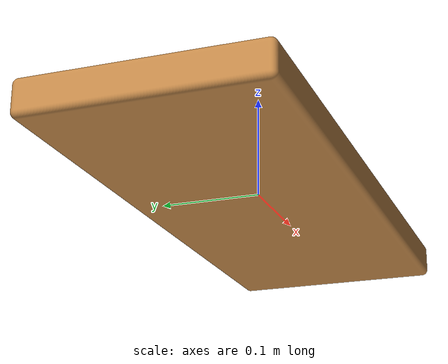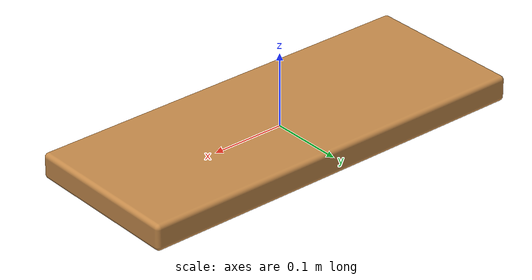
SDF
<?xml version="1.0"?><sdf version="1.6"><model name="wood_board"><static>true</static><link name="link"><visual name="board"><geometry><mesh><uri>model://wood_board/meshes/wood_board.stl</uri></mesh></geometry><material><ambient>0.77 0.54 0.29 1</ambient><diffuse>0.77 0.54 0.29 1</diffuse><specular>0.08 0.08 0.08 1</specular></material></visual><inertial><mass>0.5</mass><inertia><ixx>0.002068</ixx><iyy>0.012655</iyy><izz>0.014621</izz><ixy>0</ixy><ixz>0</ixz><iyz>0</iyz></inertia></inertial><collision name="board"><geometry><box><size>0.55 0.22 0.035</size></box></geometry></collision></link></model></sdf>
